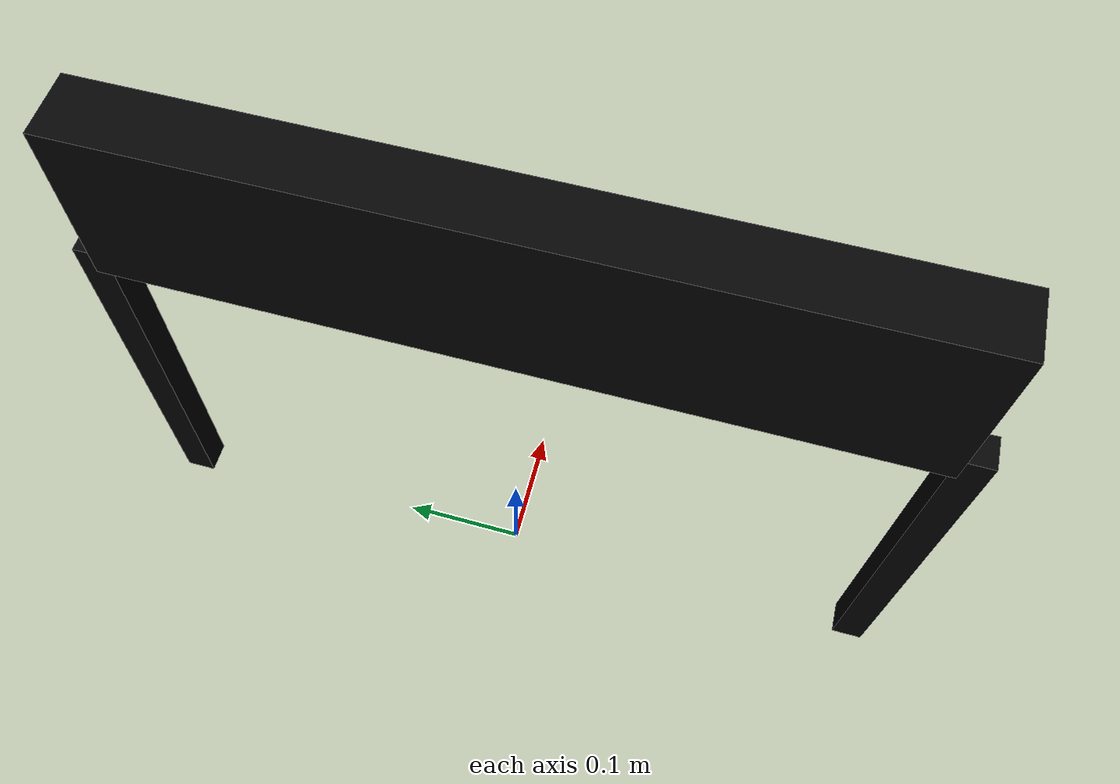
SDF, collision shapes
<?xml version="1.0"?>
<sdf version="1.10">
  <model name="traffic_light_yellow">
    <static>true</static>
    <link name="frame">
      <collision name="board_collision"><pose>0 0 0.4100 0 0 0</pose><geometry><box><size>0.050 0.59 0.14</size></box></geometry></collision>
      <visual name="board"><pose>0 0 0.4100 0 0 0</pose><geometry><box><size>0.050 0.59 0.14</size></box></geometry><material><ambient>0.015 0.015 0.018 1</ambient><diffuse>0.015 0.015 0.018 1</diffuse></material></visual>
      <collision name="left_post_collision"><pose>0 0.3075 0.17 0 0 0</pose><geometry><box><size>0.025 0.025 0.34</size></box></geometry></collision>
      <visual name="left_post"><pose>0 0.3075 0.17 0 0 0</pose><geometry><box><size>0.025 0.025 0.34</size></box></geometry><material><ambient>0.03 0.03 0.03 1</ambient><diffuse>0.03 0.03 0.03 1</diffuse></material></visual>
      <collision name="right_post_collision"><pose>0 -0.3075 0.17 0 0 0</pose><geometry><box><size>0.025 0.025 0.34</size></box></geometry></collision>
      <visual name="right_post"><pose>0 -0.3075 0.17 0 0 0</pose><geometry><box><size>0.025 0.025 0.34</size></box></geometry><material><ambient>0.03 0.03 0.03 1</ambient><diffuse>0.03 0.03 0.03 1</diffuse></material></visual>
      <visual name="red_face">
        <pose>-0.0260 0.2200 0.3400 0 0 0</pose>
        <geometry><mesh><uri>model://traffic_light_yellow/meshes/red.obj</uri></mesh></geometry>
      </visual>
      <visual name="yellow_face">
        <pose>-0.0260 0.0000 0.3400 0 0 0</pose>
        <geometry><mesh><uri>model://traffic_light_yellow/meshes/yellow.obj</uri></mesh></geometry>
      </visual>
      <visual name="green_face">
        <pose>-0.0260 -0.2200 0.3400 0 0 0</pose>
        <geometry><mesh><uri>model://traffic_light_yellow/meshes/green.obj</uri></mesh></geometry>
      </visual>
    </link>
  </model>
</sdf>
